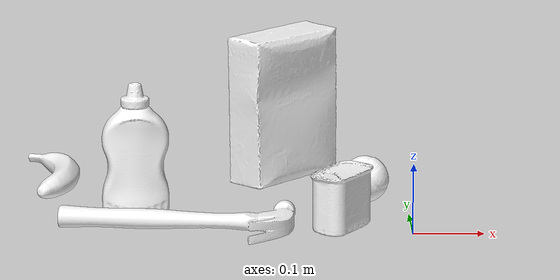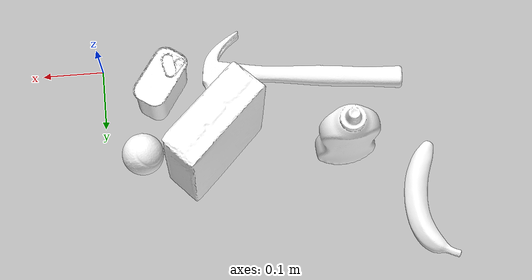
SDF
<sdf version="1.6">
 <world name="default">
  <gravity>0 0 -9.8</gravity>
  <model name="YcbHammer">
   <pose>-0.33615 0.01794 0.0 0 0 1.57</pose>
   <link name="baselink">
    <contact>
     <lateral_friction>0.3</lateral_friction>
     <rolling_friction>0.001</rolling_friction>
     <contact_cfm>0.0</contact_cfm>
     <contact_erp>1.0</contact_erp>
    </contact>
    <inertial>
     <pose>0.02 -0.01 0.01 0.0 0.0 0.0</pose>
     <mass>0.665</mass>
     <inertia><ixx>1e-3</ixx><ixy>0</ixy><ixz>0</ixz><iyy>1e-3</iyy><iyz>0</iyz><izz>1e-3</izz></inertia>
    </inertial>
    <visual name="visual">
     <geometry>
      <mesh><scale>1 1 1</scale><uri>../ycb_objects/YcbHammer/textured_reoriented.obj</uri></mesh>
     </geometry>
     <material>
      <ambient>1 1 1 1</ambient>
      <diffuse>1.00000 1.00000 1.000000 1</diffuse>
      <specular>.5 .5 .5 1</specular>
      <emissive>0 0 0 0</emissive>
     </material>
    </visual>
    <collision name="collision">
     <geometry><mesh><scale>1 1 1</scale><uri>../ycb_objects/YcbHammer/collision_vhacd.obj</uri></mesh></geometry>
    </collision>
   </link>
  </model>
  <model name="YcbTennisBall">
   <pose>-0.05479 0.16116 0.0 0 0 1.9444334</pose>
   <link name="baselink">
    <contact>
     <lateral_friction>0.8</lateral_friction>
     <rolling_friction>0.001</rolling_friction>
     <spinning_friction>0.001</spinning_friction>
     <contact_cfm>0.0</contact_cfm>
     <contact_erp>1.0</contact_erp>
    </contact>
    <inertial>
     <pose>0.0 0.005 0.03 0.0 0.0 0.0</pose>
     <mass>0.058</mass>
     <inertia><ixx>1e-3</ixx><ixy>0</ixy><ixz>0</ixz><iyy>1e-3</iyy><iyz>0</iyz><izz>1e-3</izz></inertia>
    </inertial>
    <visual name="visual">
     <geometry>
      <mesh><scale>1 1 1</scale><uri>../ycb_objects/YcbTennisBall/textured_reoriented.obj</uri></mesh>
     </geometry>
     <material>
      <ambient>1 1 1 1</ambient>
      <diffuse>1.00000 1.00000 1.000000 1</diffuse>
      <specular>.5 .5 .5 1</specular>
      <emissive>0 0 0 0</emissive>
     </material>
    </visual>
    <collision name="collision">
     <geometry>
      <mesh><scale>1 1 1</scale><uri>../ycb_objects/YcbTennisBall/collision_vhacd.obj</uri></mesh>
     </geometry>
    </collision>
   </link>
  </model>
  <model name="YcbBanana">
   <pose>-0.5 0.28849 0.0 0 0 -1.5707963</pose>
   <link name="baselink">
    <contact>
     <lateral_friction>0.3</lateral_friction>
     <rolling_friction>0.001</rolling_friction>
     <contact_cfm>0.0</contact_cfm>
     <contact_erp>1.0</contact_erp>
    </contact>
    <inertial>
     <pose>0.01 0.0 0.01 0.0 0.0 0.0</pose>
     <mass>0.066</mass>
     <inertia><ixx>1e-3</ixx><ixy>0</ixy><ixz>0</ixz><iyy>1e-3</iyy><iyz>0</iyz><izz>1e-3</izz></inertia>
    </inertial>
    <visual name="visual">
     <geometry>
      <mesh><scale>1 1 1</scale><uri>../ycb_objects/YcbBanana/textured_simple_reoriented.obj</uri></mesh>
     </geometry>
     <material>
      <ambient>1 1 1 1</ambient>
      <diffuse>1.00000 1.00000 1.000000 1</diffuse>
      <specular>.5 .5 .5 1</specular>
      <emissive>0 0 0 0</emissive>
     </material>
    </visual>
    <collision name="collision">
     <geometry><mesh><scale>1 1 1</scale><uri>../ycb_objects/YcbBanana/collision_vhacd.obj</uri></mesh></geometry>
    </collision>
   </link>
  </model>
  <model name="YcbMustardBottle">
   <pose>-0.39456 0.16899 0.07 0 0 0</pose>
   <link name="baselink">
    <contact>
     <lateral_friction>0.8</lateral_friction>
     <rolling_friction>0.001</rolling_friction>
     <spinning_friction>0.001</spinning_friction>
     <contact_cfm>0.0</contact_cfm>
     <contact_erp>1.0</contact_erp>
    </contact>
    <inertial>
     <pose>0.005 -0.005 -0.015 0.0 0.0 0.1</pose>
     <mass>0.603</mass>
     <inertia><ixx>1e-3</ixx><ixy>0</ixy><ixz>0</ixz><iyy>1e-3</iyy><iyz>0</iyz><izz>1e-3</izz></inertia>
    </inertial>
    <visual name="visual">
     <geometry>
      <mesh><scale>1 1 1</scale><uri>../ycb_objects/YcbMustardBottle/textured_simple_reoriented.obj</uri></mesh>
     </geometry>
     <material>
      <ambient>1 1 1 1</ambient>
      <diffuse>1.00000 1.00000 1.000000 1</diffuse>
      <specular>.5 .5 .5 1</specular>
      <emissive>0 0 0 0</emissive>
     </material>
    </visual>
    <collision name="collision">
     <geometry>
      <mesh><scale>1 1 1</scale><uri>../ycb_objects/YcbMustardBottle/collision_vhacd.obj</uri></mesh>
     </geometry>
    </collision>
   </link>
  </model>
  <model name="YcbPottedMeatCan">
   <pose>-0.110 0.04439 0.047 0 0 -1.5707963</pose>
   <link name="baselink">
    <contact>
     <lateral_friction>0.6</lateral_friction>
     <rolling_friction>0.00</rolling_friction>
     <contact_cfm>0.0</contact_cfm>
     <contact_erp>1.0</contact_erp>
    </contact>
    <inertial>
     <pose>0 0.012 -0.01 0 0 -0.5</pose>
     <mass>0.370</mass>
     <inertia><ixx>1e-3</ixx><ixy>0</ixy><ixz>0</ixz><iyy>1e-3</iyy><iyz>0</iyz><izz>1e-3</izz></inertia>
    </inertial>
    <visual name="visual">
     <geometry>
      <mesh><scale>1 1 1</scale><uri>../ycb_objects/YcbPottedMeatCan/textured_simple_reoriented.obj</uri></mesh>
     </geometry>
     <material>
      <ambient>1 1 1 1</ambient>
      <diffuse>1.00000 1.00000 1.000000 1</diffuse>
      <specular>.5 .5 .5 1</specular>
      <emissive>0 0 0 0</emissive>
     </material>
    </visual>
    <collision name="collision">
     <geometry>
      <mesh><scale>1 1 1</scale><uri>../ycb_objects/YcbPottedMeatCan/collision_vhacd.obj</uri></mesh>
     </geometry>
    </collision>
   </link>
  </model>
  <model name="YcbCrackerBox">
   <pose>-0.18920 0.19439 0.15 0 0 -0.785</pose>
   <link name="baselink">
    <contact>
     <lateral_friction>0.5</lateral_friction>
     <contact_cfm>0.0</contact_cfm>
     <contact_erp>1.0</contact_erp>
    </contact>
    <inertial>
     <pose>0.03 -0.01 -0.02 0 0 0</pose>
     <mass>0.411</mass>
     <inertia><ixx>1e-3</ixx><ixy>0</ixy><ixz>0</ixz><iyy>1e-3</iyy><iyz>0</iyz><izz>1e-3</izz></inertia>
    </inertial>
    <visual name="visual">
     <geometry>
      <mesh><scale>1 1 1</scale><uri>../ycb_objects/YcbCrackerBox/textured_simple_reoriented.obj</uri></mesh>
     </geometry>
     <material>
      <ambient>1 1 1 1</ambient>
      <diffuse>1.00000 1.00000 1.000000 1</diffuse>
      <specular>.5 .5 .5 1</specular>
      <emissive>0 0 0 0</emissive>
     </material>
    </visual>
    <collision name="collision">
     <geometry>
      <mesh><scale>1 1 1</scale><uri>../ycb_objects/YcbCrackerBox/collision_vhacd.obj</uri></mesh>
     </geometry>
    </collision>
   </link>
  </model>
 </world>
</sdf>
